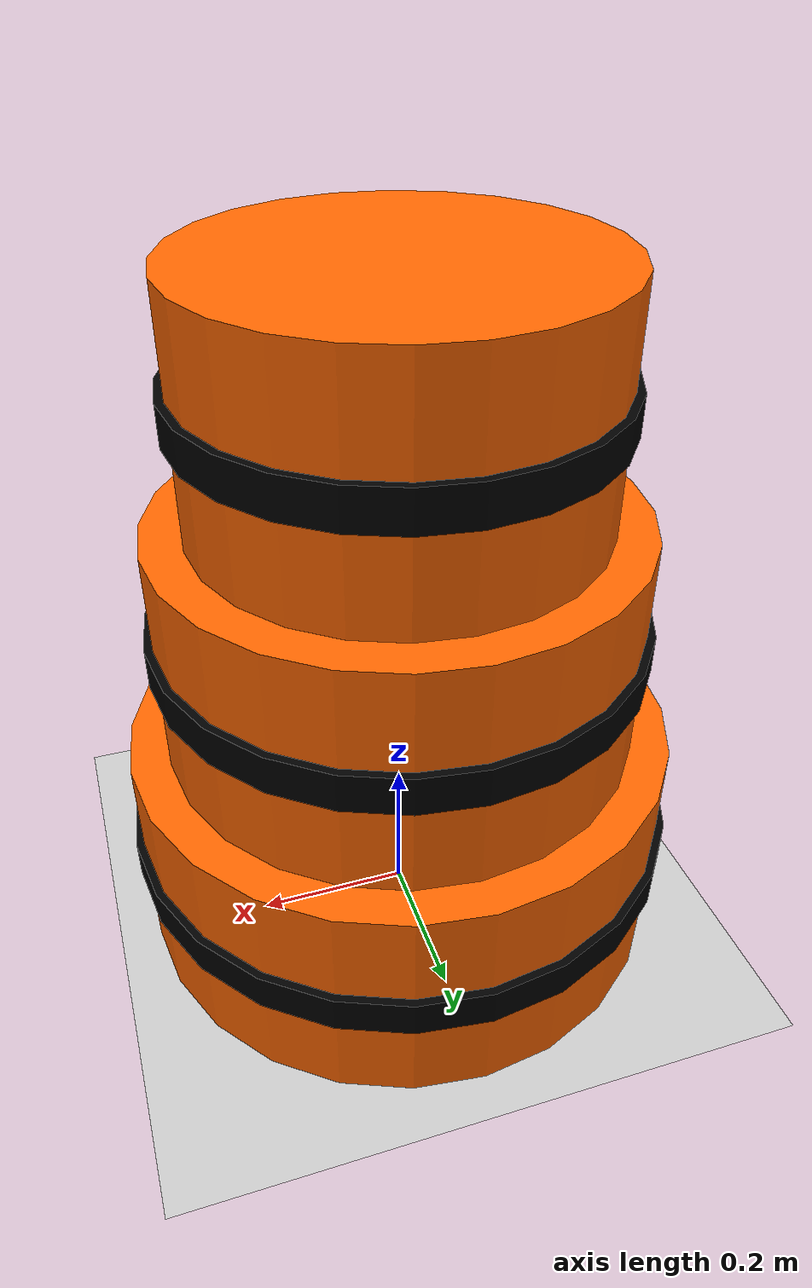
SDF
<?xml version="1.0" ?>
<sdf version="1.7">
  <world name="default">
    <!-- Ground and Sun -->
    <include>
      <uri>model://ground_plane</uri>
    </include>
    <include>
      <uri>model://sun</uri>
    </include>

    <!-- Traffic Barrel -->
    <model name="traffic_barrel">
      <static>false</static>
      <pose>0 0 0 0 0 0</pose>
      <link name="barrel_link">

        <!-- Base Cylinder -->
        <collision name="base_collision">
          <pose>0 0 0.15 0 0 0</pose>
          <geometry>
            <cylinder>
              <radius>0.35</radius>
              <length>0.3</length>
            </cylinder>
          </geometry>
        </collision>
        <visual name="base_visual">
          <pose>0 0 0.15 0 0 0</pose>
          <geometry>
            <cylinder>
              <radius>0.35</radius>
              <length>0.3</length>
            </cylinder>
          </geometry>
          <material>
            <ambient>1 0.4 0 1</ambient>
            <diffuse>1 0.4 0 1</diffuse>
          </material>
        </visual>

        <!-- Middle Cylinder -->
        <collision name="mid_collision">
          <pose>0 0 0.45 0 0 0</pose>
          <geometry>
            <cylinder>
              <radius>0.3</radius>
              <length>0.3</length>
            </cylinder>
          </geometry>
        </collision>
        <visual name="mid_visual">
          <pose>0 0 0.45 0 0 0</pose>
          <geometry>
            <cylinder>
              <radius>0.3</radius>
              <length>0.3</length>
            </cylinder>
          </geometry>
          <material>
            <ambient>1 0.4 0 1</ambient>
            <diffuse>1 0.4 0 1</diffuse>
          </material>
        </visual>

        <!-- Top Cylinder -->
        <collision name="top_collision">
          <pose>0 0 0.75 0 0 0</pose>
          <geometry>
            <cylinder>
              <radius>0.25</radius>
              <length>0.3</length>
            </cylinder>
          </geometry>
        </collision>
        <visual name="top_visual">
          <pose>0 0 0.75 0 0 0</pose>
          <geometry>
            <cylinder>
              <radius>0.25</radius>
              <length>0.3</length>
            </cylinder>
          </geometry>
          <material>
            <ambient>1 0.4 0 1</ambient>
            <diffuse>1 0.4 0 1</diffuse>
          </material>
        </visual>

        <!-- Black Stripes -->
        <visual name="stripe1">
          <pose>0 0 0.15 0 0 0</pose>
          <geometry>
            <cylinder>
              <radius>0.36</radius>
              <length>0.05</length>
            </cylinder>
          </geometry>
          <material>
            <ambient>0 0 0 1</ambient>
            <diffuse>0 0 0 1</diffuse>
          </material>
        </visual>

        <visual name="stripe2">
          <pose>0 0 0.45 0 0 0</pose>
          <geometry>
            <cylinder>
              <radius>0.31</radius>
              <length>0.05</length>
            </cylinder>
          </geometry>
          <material>
            <ambient>0 0 0 1</ambient>
            <diffuse>0 0 0 1</diffuse>
          </material>
        </visual>

        <visual name="stripe3">
          <pose>0 0 0.75 0 0 0</pose>
          <geometry>
            <cylinder>
              <radius>0.26</radius>
              <length>0.05</length>
            </cylinder>
          </geometry>
          <material>
            <ambient>0 0 0 1</ambient>
            <diffuse>0 0 0 1</diffuse>
          </material>
        </visual>

      </link>
    </model>
  </world>
</sdf>
